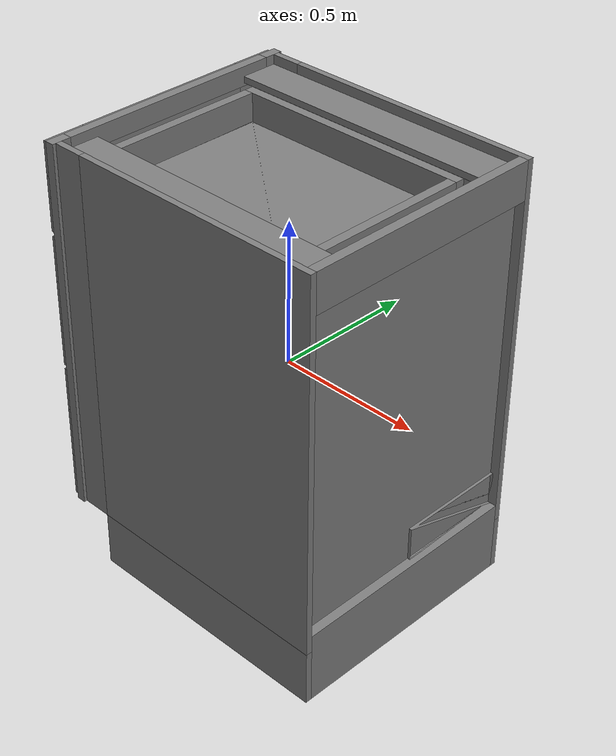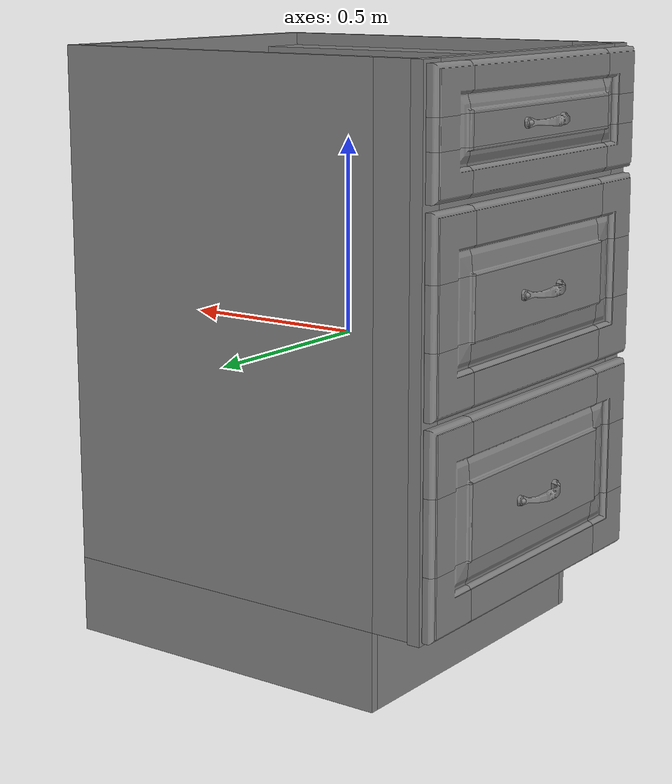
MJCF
<mujoco model="partnet_13aeab12a8ccdb244da5feafe6f1c8fc">
    <compiler angle="radian" />
    <size njmax="500" nconmax="100" />
    <asset>
        <mesh name="original-95" file="original-95.stl" />
        <mesh name="original-86" file="original-86.stl" />
        <mesh name="original-89" file="original-89.stl" />
        <mesh name="original-90" file="original-90.stl" />
        <mesh name="original-91" file="original-91.stl" />
        <mesh name="original-88" file="original-88.stl" />
        <mesh name="original-93" file="original-93.stl" />
        <mesh name="original-87" file="original-87.stl" />
        <mesh name="original-92" file="original-92.stl" />
        <mesh name="original-96" file="original-96.stl" />
        <mesh name="original-78" file="original-78.stl" />
        <mesh name="original-82" file="original-82.stl" />
        <mesh name="original-77" file="original-77.stl" />
        <mesh name="original-83" file="original-83.stl" />
        <mesh name="original-81" file="original-81.stl" />
        <mesh name="original-80" file="original-80.stl" />
        <mesh name="original-98" file="original-98.stl" />
        <mesh name="original-100" file="original-100.stl" />
        <mesh name="original-99" file="original-99.stl" />
        <mesh name="original-84" file="original-84.stl" />
        <mesh name="original-22" file="original-22.stl" />
        <mesh name="original-34" file="original-34.stl" />
        <mesh name="original-38" file="original-38.stl" />
        <mesh name="original-44" file="original-44.stl" />
        <mesh name="original-41" file="original-41.stl" />
        <mesh name="original-35" file="original-35.stl" />
        <mesh name="original-36" file="original-36.stl" />
        <mesh name="original-39" file="original-39.stl" />
        <mesh name="original-40" file="original-40.stl" />
        <mesh name="original-37" file="original-37.stl" />
        <mesh name="original-43" file="original-43.stl" />
        <mesh name="original-26" file="original-26.stl" />
        <mesh name="original-25" file="original-25.stl" />
        <mesh name="original-30" file="original-30.stl" />
        <mesh name="original-31" file="original-31.stl" />
        <mesh name="original-29" file="original-29.stl" />
        <mesh name="original-28" file="original-28.stl" />
        <mesh name="original-46" file="original-46.stl" />
        <mesh name="original-47" file="original-47.stl" />
        <mesh name="original-48" file="original-48.stl" />
        <mesh name="original-32" file="original-32.stl" />
        <mesh name="original-70" file="original-70.stl" />
        <mesh name="original-65" file="original-65.stl" />
        <mesh name="original-66" file="original-66.stl" />
        <mesh name="original-63" file="original-63.stl" />
        <mesh name="original-62" file="original-62.stl" />
        <mesh name="original-67" file="original-67.stl" />
        <mesh name="original-64" file="original-64.stl" />
        <mesh name="original-60" file="original-60.stl" />
        <mesh name="original-61" file="original-61.stl" />
        <mesh name="original-69" file="original-69.stl" />
        <mesh name="original-52" file="original-52.stl" />
        <mesh name="original-56" file="original-56.stl" />
        <mesh name="original-51" file="original-51.stl" />
        <mesh name="original-57" file="original-57.stl" />
        <mesh name="original-54" file="original-54.stl" />
        <mesh name="original-55" file="original-55.stl" />
        <mesh name="original-72" file="original-72.stl" />
        <mesh name="original-73" file="original-73.stl" />
        <mesh name="original-74" file="original-74.stl" />
        <mesh name="original-58" file="original-58.stl" />
        <mesh name="original-21" file="original-21.stl" />
        <mesh name="original-20" file="original-20.stl" />
        <mesh name="original-17" file="original-17.stl" />
        <mesh name="original-15" file="original-15.stl" />
        <mesh name="original-14" file="original-14.stl" />
        <mesh name="original-11" file="original-11.stl" />
        <mesh name="original-10" file="original-10.stl" />
        <mesh name="original-5" file="original-5.stl" />
        <mesh name="original-2" file="original-2.stl" />
        <mesh name="original-4" file="original-4.stl" />
        <mesh name="original-7" file="original-7.stl" />
        <mesh name="original-3" file="original-3.stl" />
        <mesh name="original-8" file="original-8.stl" />
        <mesh name="original-6" file="original-6.stl" />
        <mesh name="original-101" file="original-101.stl" />
        <mesh name="original-18" file="original-18.stl" />
        <mesh name="original-12" file="original-12.stl" />
        <mesh name="original-19" file="original-19.stl" />
        <mesh name="original-16" file="original-16.stl" />
    </asset>
    <worldbody>
    <body>
        <body name="object">
        <geom quat="0.5 0.5 -0.5 -0.5" type="mesh" group="0" mesh="original-21" contype="0" conaffinity="0"/>
        <geom quat="0.5 0.5 -0.5 -0.5" type="mesh" group="0" mesh="original-20" contype="0" conaffinity="0"/>
        <geom quat="0.5 0.5 -0.5 -0.5" type="mesh" group="0" mesh="original-17" contype="0" conaffinity="0"/>
        <geom quat="0.5 0.5 -0.5 -0.5" type="mesh" group="0" mesh="original-15" contype="0" conaffinity="0"/>
        <geom quat="0.5 0.5 -0.5 -0.5" type="mesh" group="0" mesh="original-14" contype="0" conaffinity="0"/>
        <geom quat="0.5 0.5 -0.5 -0.5" type="mesh" group="0" mesh="original-11" contype="0" conaffinity="0"/>
        <geom quat="0.5 0.5 -0.5 -0.5" type="mesh" group="0" mesh="original-10" contype="0" conaffinity="0"/>
        <geom quat="0.5 0.5 -0.5 -0.5" type="mesh" group="0" mesh="original-5" contype="0" conaffinity="0"/>
        <geom quat="0.5 0.5 -0.5 -0.5" type="mesh" group="0" mesh="original-2" contype="0" conaffinity="0"/>
        <geom quat="0.5 0.5 -0.5 -0.5" type="mesh" group="0" mesh="original-4" contype="0" conaffinity="0"/>
        <geom quat="0.5 0.5 -0.5 -0.5" type="mesh" group="0" mesh="original-7" contype="0" conaffinity="0"/>
        <geom quat="0.5 0.5 -0.5 -0.5" type="mesh" group="0" mesh="original-3" contype="0" conaffinity="0"/>
        <geom quat="0.5 0.5 -0.5 -0.5" type="mesh" group="0" mesh="original-8" contype="0" conaffinity="0"/>
        <geom quat="0.5 0.5 -0.5 -0.5" type="mesh" group="0" mesh="original-6" contype="0" conaffinity="0"/>
        <geom quat="0.5 0.5 -0.5 -0.5" type="mesh" group="0" mesh="original-101" contype="0" conaffinity="0"/>
        <geom quat="0.5 0.5 -0.5 -0.5" type="mesh" group="0" mesh="original-18" contype="0" conaffinity="0"/>
        <geom quat="0.5 0.5 -0.5 -0.5" type="mesh" group="0" mesh="original-12" contype="0" conaffinity="0"/>
        <geom quat="0.5 0.5 -0.5 -0.5" type="mesh" group="0" mesh="original-19" contype="0" conaffinity="0"/>
        <geom quat="0.5 0.5 -0.5 -0.5" type="mesh" group="0" mesh="original-16" contype="0" conaffinity="0"/>
        <body name="link_0" pos="-0.566181 -0.115112 0.581887" quat="0.5 0.5 -0.5 -0.5">
            <inertial pos="-0.117737 -0.0285003 -0.368492" quat="0.707003 -0.00668771 0.00767931 0.707137" mass="30.2182" diaginertia="5.09684 3.26936 2.01892" />
            <joint name="joint_0" pos="0 0 0" axis="0 0 1" type="slide" limited="true" range="0 0.8" />
            <geom pos="-0.115112 -0.581887 -0.566181" type="mesh" group="0" mesh="original-95" />
            <geom pos="-0.115112 -0.581887 -0.566181" type="mesh" group="0" mesh="original-86" />
            <geom pos="-0.115112 -0.581887 -0.566181" type="mesh" group="0" mesh="original-89" />
            <geom pos="-0.115112 -0.581887 -0.566181" type="mesh" group="0" mesh="original-90" />
            <geom pos="-0.115112 -0.581887 -0.566181" type="mesh" group="0" mesh="original-91" />
            <geom pos="-0.115112 -0.581887 -0.566181" type="mesh" group="0" mesh="original-88" />
            <geom pos="-0.115112 -0.581887 -0.566181" type="mesh" group="0" mesh="original-93" />
            <geom pos="-0.115112 -0.581887 -0.566181" type="mesh" group="0" mesh="original-87" />
            <geom pos="-0.115112 -0.581887 -0.566181" type="mesh" group="0" mesh="original-92" />
            <geom pos="-0.115112 -0.581887 -0.566181" type="mesh" group="0" mesh="original-96" />
            <geom pos="-0.115112 -0.581887 -0.566181" type="mesh" group="0" mesh="original-78" />
            <geom pos="-0.115112 -0.581887 -0.566181" type="mesh" group="0" mesh="original-82" />
            <geom pos="-0.115112 -0.581887 -0.566181" type="mesh" group="0" mesh="original-77" />
            <geom pos="-0.115112 -0.581887 -0.566181" type="mesh" group="0" mesh="original-83" />
            <geom pos="-0.115112 -0.581887 -0.566181" type="mesh" group="0" mesh="original-81" />
            <geom pos="-0.115112 -0.581887 -0.566181" type="mesh" group="0" mesh="original-80" />
            <geom pos="-0.115112 -0.581887 -0.566181" type="mesh" group="0" mesh="original-98" />
            <geom pos="-0.115112 -0.581887 -0.566181" type="mesh" group="0" mesh="original-100" />
            <geom pos="-0.115112 -0.581887 -0.566181" type="mesh" group="0" mesh="original-99" />
            <geom pos="-0.115112 -0.581887 -0.566181" type="mesh" group="0" mesh="original-84" />
        </body>
        <body name="link_1" pos="0.47081 0.122633 -0.341345" quat="0.5 0.5 -0.5 -0.5">
            <inertial pos="0.119747 -0.00260443 0.664758" quat="0.706634 -0.0172895 0.0178523 0.707143" mass="57.7058" diaginertia="10.5543 7.48265 5.00352" />
            <joint name="joint_1" pos="0 0 0" axis="0 0 1" type="slide" limited="true" range="0 0.8" />
            <geom pos="0.122633 0.341345 0.47081" type="mesh" group="0" mesh="original-22" />
            <geom pos="0.122633 0.341345 0.47081" type="mesh" group="0" mesh="original-34" />
            <geom pos="0.122633 0.341345 0.47081" type="mesh" group="0" mesh="original-38" />
            <geom pos="0.122633 0.341345 0.47081" type="mesh" group="0" mesh="original-44" />
            <geom pos="0.122633 0.341345 0.47081" type="mesh" group="0" mesh="original-41" />
            <geom pos="0.122633 0.341345 0.47081" type="mesh" group="0" mesh="original-35" />
            <geom pos="0.122633 0.341345 0.47081" type="mesh" group="0" mesh="original-36" />
            <geom pos="0.122633 0.341345 0.47081" type="mesh" group="0" mesh="original-39" />
            <geom pos="0.122633 0.341345 0.47081" type="mesh" group="0" mesh="original-40" />
            <geom pos="0.122633 0.341345 0.47081" type="mesh" group="0" mesh="original-37" />
            <geom pos="0.122633 0.341345 0.47081" type="mesh" group="0" mesh="original-43" />
            <geom pos="0.122633 0.341345 0.47081" type="mesh" group="0" mesh="original-26" />
            <geom pos="0.122633 0.341345 0.47081" type="mesh" group="0" mesh="original-25" />
            <geom pos="0.122633 0.341345 0.47081" type="mesh" group="0" mesh="original-30" />
            <geom pos="0.122633 0.341345 0.47081" type="mesh" group="0" mesh="original-31" />
            <geom pos="0.122633 0.341345 0.47081" type="mesh" group="0" mesh="original-29" />
            <geom pos="0.122633 0.341345 0.47081" type="mesh" group="0" mesh="original-28" />
            <geom pos="0.122633 0.341345 0.47081" type="mesh" group="0" mesh="original-46" />
            <geom pos="0.122633 0.341345 0.47081" type="mesh" group="0" mesh="original-47" />
            <geom pos="0.122633 0.341345 0.47081" type="mesh" group="0" mesh="original-48" />
            <geom pos="0.122633 0.341345 0.47081" type="mesh" group="0" mesh="original-32" />
        </body>
        <body name="link_2" pos="0.47081 0.0525963 0.110191" quat="0.5 0.5 -0.5 -0.5">
            <inertial pos="0.0497217 0.0236967 0.651372" quat="0.706738 -0.0118702 0.0125251 0.707264" mass="55.471" diaginertia="10.1863 7.06339 4.7455" />
            <joint name="joint_2" pos="0 0 0" axis="0 0 1" type="slide" limited="true" range="0 0.8" />
            <geom pos="0.0525963 -0.110191 0.47081" type="mesh" group="0" mesh="original-70" />
            <geom pos="0.0525963 -0.110191 0.47081" type="mesh" group="0" mesh="original-65" />
            <geom pos="0.0525963 -0.110191 0.47081" type="mesh" group="0" mesh="original-66" />
            <geom pos="0.0525963 -0.110191 0.47081" type="mesh" group="0" mesh="original-63" />
            <geom pos="0.0525963 -0.110191 0.47081" type="mesh" group="0" mesh="original-62" />
            <geom pos="0.0525963 -0.110191 0.47081" type="mesh" group="0" mesh="original-67" />
            <geom pos="0.0525963 -0.110191 0.47081" type="mesh" group="0" mesh="original-64" />
            <geom pos="0.0525963 -0.110191 0.47081" type="mesh" group="0" mesh="original-60" />
            <geom pos="0.0525963 -0.110191 0.47081" type="mesh" group="0" mesh="original-61" />
            <geom pos="0.0525963 -0.110191 0.47081" type="mesh" group="0" mesh="original-69" />
            <geom pos="0.0525963 -0.110191 0.47081" type="mesh" group="0" mesh="original-52" />
            <geom pos="0.0525963 -0.110191 0.47081" type="mesh" group="0" mesh="original-56" />
            <geom pos="0.0525963 -0.110191 0.47081" type="mesh" group="0" mesh="original-51" />
            <geom pos="0.0525963 -0.110191 0.47081" type="mesh" group="0" mesh="original-57" />
            <geom pos="0.0525963 -0.110191 0.47081" type="mesh" group="0" mesh="original-54" />
            <geom pos="0.0525963 -0.110191 0.47081" type="mesh" group="0" mesh="original-55" />
            <geom pos="0.0525963 -0.110191 0.47081" type="mesh" group="0" mesh="original-72" />
            <geom pos="0.0525963 -0.110191 0.47081" type="mesh" group="0" mesh="original-73" />
            <geom pos="0.0525963 -0.110191 0.47081" type="mesh" group="0" mesh="original-74" />
            <geom pos="0.0525963 -0.110191 0.47081" type="mesh" group="0" mesh="original-58" />
        </body>
    </body>
        <site name="bottom_site" pos="0 0 -0.3" rgba="0 0 0 0" size="0.005"/>
        <site name="top_site" pos="0 0 0.3" rgba="0 0 0 0" size="0.005"/>
        <site name="horizontal_radius_site" pos="0.3 0 0" rgba="0 0 0 0" size="0.1"/>
    </body>
    </worldbody>
</mujoco>
